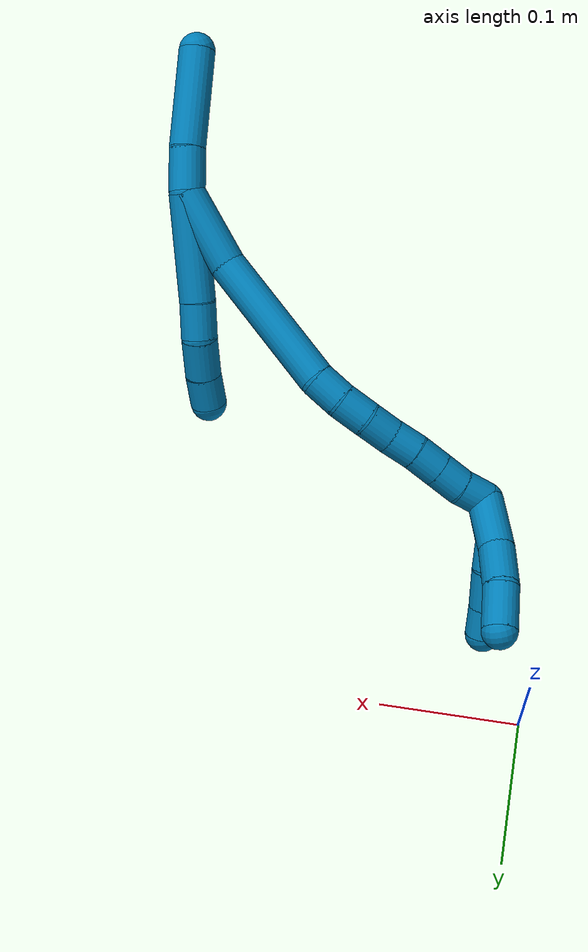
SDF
<sdf version="1.7">
 <world name="default">
  <model name="9">
   <static>0</static>
   <link name="9">
    <collision name="collision-cylinder-e_1_2_8">
     <pose>0.005342 0.003132 -0.036532 -3.05607 0.144677 -2.07482</pose>
     <geometry><cylinder><radius>0.0125</radius><length>0.074107</length></cylinder></geometry>
     <surface>
      <friction><ode><mu>1.16</mu><mu2>1.16</mu2><slip1>0</slip1><slip2>0</slip2></ode></friction>
      <contact><ode><kp>1e+06</kp><kd>1</kd><max_vel>0</max_vel><min_depth>0.001</min_depth></ode></contact>
     </surface>
    </collision>
    <visual name="visual-cylinder-e_1_2_8">
     <pose>0.005342 0.003132 -0.036532 -3.05607 0.144677 -2.07482</pose>
     <geometry><cylinder><radius>0.0125</radius><length>0.074107</length></cylinder></geometry>
     <material><ambient>0 0.490196 0.709804 1</ambient></material>
    </visual>
    <collision name="collision-cylinder-e_2_8_9">
     <pose>0.01289 0.00648 -0.085476 -3.12419 0.175883 -2.94481</pose>
     <geometry><cylinder><radius>0.0125</radius><length>0.025216</length></cylinder></geometry>
     <surface>
      <friction><ode><mu>1.16</mu><mu2>1.16</mu2><slip1>0</slip1><slip2>0</slip2></ode></friction>
      <contact><ode><kp>1e+06</kp><kd>1</kd><max_vel>0</max_vel><min_depth>0.001</min_depth></ode></contact>
     </surface>
    </collision>
    <visual name="visual-cylinder-e_2_8_9">
     <pose>0.01289 0.00648 -0.085476 -3.12419 0.175883 -2.94481</pose>
     <geometry><cylinder><radius>0.0125</radius><length>0.025216</length></cylinder></geometry>
     <material><ambient>0 0.490196 0.709804 1</ambient></material>
    </visual>
    <collision name="collision-cylinder-e_3_9_10">
     <pose>0.015751 0.003376 -0.111383 2.90035 0.047031 0.383329</pose>
     <geometry><cylinder><radius>0.0125</radius><length>0.027826</length></cylinder></geometry>
     <surface>
      <friction><ode><mu>1.16</mu><mu2>1.16</mu2><slip1>0</slip1><slip2>0</slip2></ode></friction>
      <contact><ode><kp>1e+06</kp><kd>1</kd><max_vel>0</max_vel><min_depth>0.001</min_depth></ode></contact>
     </surface>
    </collision>
    <visual name="visual-cylinder-e_3_9_10">
     <pose>0.015751 0.003376 -0.111383 2.90035 0.047031 0.383329</pose>
     <geometry><cylinder><radius>0.0125</radius><length>0.027826</length></cylinder></geometry>
     <material><ambient>0 0.490196 0.709804 1</ambient></material>
    </visual>
    <collision name="collision-cylinder-e_4_10_6">
     <pose>0.016059 -0.002665 -0.13597 2.90105 -0.030264 -0.249141</pose>
     <geometry><cylinder><radius>0.0125</radius><length>0.022851</length></cylinder></geometry>
     <surface>
      <friction><ode><mu>1.16</mu><mu2>1.16</mu2><slip1>0</slip1><slip2>0</slip2></ode></friction>
      <contact><ode><kp>1e+06</kp><kd>1</kd><max_vel>0</max_vel><min_depth>0.001</min_depth></ode></contact>
     </surface>
    </collision>
    <visual name="visual-cylinder-e_4_10_6">
     <pose>0.016059 -0.002665 -0.13597 2.90105 -0.030264 -0.249141</pose>
     <geometry><cylinder><radius>0.0125</radius><length>0.022851</length></cylinder></geometry>
     <material><ambient>0 0.490196 0.709804 1</ambient></material>
    </visual>
    <collision name="collision-cylinder-e_1_2_11">
     <pose>-0.00447 -0.00431 0.013926 0.300174 -0.297543 -0.045323</pose>
     <geometry><cylinder><radius>0.0125</radius><length>0.030495</length></cylinder></geometry>
     <surface>
      <friction><ode><mu>1.16</mu><mu2>1.16</mu2><slip1>0</slip1><slip2>0</slip2></ode></friction>
      <contact><ode><kp>1e+06</kp><kd>1</kd><max_vel>0</max_vel><min_depth>0.001</min_depth></ode></contact>
     </surface>
    </collision>
    <visual name="visual-cylinder-e_1_2_11">
     <pose>-0.00447 -0.00431 0.013926 0.300174 -0.297543 -0.045323</pose>
     <geometry><cylinder><radius>0.0125</radius><length>0.030495</length></cylinder></geometry>
     <material><ambient>0 0.490196 0.709804 1</ambient></material>
    </visual>
    <collision name="collision-cylinder-e_2_11_5">
     <pose>-0.022327 -0.019147 0.058145 0.334432 -0.39542 -0.067602</pose>
     <geometry><cylinder><radius>0.0125</radius><length>0.069505</length></cylinder></geometry>
     <surface>
      <friction><ode><mu>1.16</mu><mu2>1.16</mu2><slip1>0</slip1><slip2>0</slip2></ode></friction>
      <contact><ode><kp>1e+06</kp><kd>1</kd><max_vel>0</max_vel><min_depth>0.001</min_depth></ode></contact>
     </surface>
    </collision>
    <visual name="visual-cylinder-e_2_11_5">
     <pose>-0.022327 -0.019147 0.058145 0.334432 -0.39542 -0.067602</pose>
     <geometry><cylinder><radius>0.0125</radius><length>0.069505</length></cylinder></geometry>
     <material><ambient>0 0.490196 0.709804 1</ambient></material>
    </visual>
    <collision name="collision-cylinder-e_1_2_12">
     <pose>-0.006143 0.009482 -0.025658 -2.78761 -0.22091 1.11008</pose>
     <geometry><cylinder><radius>0.0125</radius><length>0.056071</length></cylinder></geometry>
     <surface>
      <friction><ode><mu>1.16</mu><mu2>1.16</mu2><slip1>0</slip1><slip2>0</slip2></ode></friction>
      <contact><ode><kp>1e+06</kp><kd>1</kd><max_vel>0</max_vel><min_depth>0.001</min_depth></ode></contact>
     </surface>
    </collision>
    <visual name="visual-cylinder-e_1_2_12">
     <pose>-0.006143 0.009482 -0.025658 -2.78761 -0.22091 1.11008</pose>
     <geometry><cylinder><radius>0.0125</radius><length>0.056071</length></cylinder></geometry>
     <material><ambient>0 0.490196 0.709804 1</ambient></material>
    </visual>
    <collision name="collision-cylinder-e_2_12_13">
     <pose>-0.026939 0.046518 -0.090883 -2.53329 -0.295037 0.884296</pose>
     <geometry><cylinder><radius>0.0125</radius><length>0.100785</length></cylinder></geometry>
     <surface>
      <friction><ode><mu>1.16</mu><mu2>1.16</mu2><slip1>0</slip1><slip2>0</slip2></ode></friction>
      <contact><ode><kp>1e+06</kp><kd>1</kd><max_vel>0</max_vel><min_depth>0.001</min_depth></ode></contact>
     </surface>
    </collision>
    <visual name="visual-cylinder-e_2_12_13">
     <pose>-0.026939 0.046518 -0.090883 -2.53329 -0.295037 0.884296</pose>
     <geometry><cylinder><radius>0.0125</radius><length>0.100785</length></cylinder></geometry>
     <material><ambient>0 0.490196 0.709804 1</ambient></material>
    </visual>
    <collision name="collision-cylinder-e_3_13_14">
     <pose>-0.046916 0.078795 -0.138617 -2.6173 -0.513748 1.54953</pose>
     <geometry><cylinder><radius>0.0125</radius><length>0.021667</length></cylinder></geometry>
     <surface>
      <friction><ode><mu>1.16</mu><mu2>1.16</mu2><slip1>0</slip1><slip2>0</slip2></ode></friction>
      <contact><ode><kp>1e+06</kp><kd>1</kd><max_vel>0</max_vel><min_depth>0.001</min_depth></ode></contact>
     </surface>
    </collision>
    <visual name="visual-cylinder-e_3_13_14">
     <pose>-0.046916 0.078795 -0.138617 -2.6173 -0.513748 1.54953</pose>
     <geometry><cylinder><radius>0.0125</radius><length>0.021667</length></cylinder></geometry>
     <material><ambient>0 0.490196 0.709804 1</ambient></material>
    </visual>
    <collision name="collision-cylinder-e_4_14_15">
     <pose>-0.058667 0.086865 -0.154488 -2.73163 -0.653171 2.04059</pose>
     <geometry><cylinder><radius>0.0125</radius><length>0.021152</length></cylinder></geometry>
     <surface>
      <friction><ode><mu>1.16</mu><mu2>1.16</mu2><slip1>0</slip1><slip2>0</slip2></ode></friction>
      <contact><ode><kp>1e+06</kp><kd>1</kd><max_vel>0</max_vel><min_depth>0.001</min_depth></ode></contact>
     </surface>
    </collision>
    <visual name="visual-cylinder-e_4_14_15">
     <pose>-0.058667 0.086865 -0.154488 -2.73163 -0.653171 2.04059</pose>
     <geometry><cylinder><radius>0.0125</radius><length>0.021152</length></cylinder></geometry>
     <material><ambient>0 0.490196 0.709804 1</ambient></material>
    </visual>
    <collision name="collision-cylinder-e_5_15_16">
     <pose>-0.071649 0.091817 -0.169755 -2.93265 -0.703124 2.58472</pose>
     <geometry><cylinder><radius>0.0125</radius><length>0.020274</length></cylinder></geometry>
     <surface>
      <friction><ode><mu>1.16</mu><mu2>1.16</mu2><slip1>0</slip1><slip2>0</slip2></ode></friction>
      <contact><ode><kp>1e+06</kp><kd>1</kd><max_vel>0</max_vel><min_depth>0.001</min_depth></ode></contact>
     </surface>
    </collision>
    <visual name="visual-cylinder-e_5_15_16">
     <pose>-0.071649 0.091817 -0.169755 -2.93265 -0.703124 2.58472</pose>
     <geometry><cylinder><radius>0.0125</radius><length>0.020274</length></cylinder></geometry>
     <material><ambient>0 0.490196 0.709804 1</ambient></material>
    </visual>
    <collision name="collision-cylinder-e_6_16_17">
     <pose>-0.084884 0.095903 -0.184336 -2.8016 -0.731545 2.29892</pose>
     <geometry><cylinder><radius>0.0125</radius><length>0.020002</length></cylinder></geometry>
     <surface>
      <friction><ode><mu>1.16</mu><mu2>1.16</mu2><slip1>0</slip1><slip2>0</slip2></ode></friction>
      <contact><ode><kp>1e+06</kp><kd>1</kd><max_vel>0</max_vel><min_depth>0.001</min_depth></ode></contact>
     </surface>
    </collision>
    <visual name="visual-cylinder-e_6_16_17">
     <pose>-0.084884 0.095903 -0.184336 -2.8016 -0.731545 2.29892</pose>
     <geometry><cylinder><radius>0.0125</radius><length>0.020002</length></cylinder></geometry>
     <material><ambient>0 0.490196 0.709804 1</ambient></material>
    </visual>
    <collision name="collision-cylinder-e_7_17_18">
     <pose>-0.09772 0.100418 -0.198997 -2.8817 -0.661198 2.41394</pose>
     <geometry><cylinder><radius>0.0125</radius><length>0.020046</length></cylinder></geometry>
     <surface>
      <friction><ode><mu>1.16</mu><mu2>1.16</mu2><slip1>0</slip1><slip2>0</slip2></ode></friction>
      <contact><ode><kp>1e+06</kp><kd>1</kd><max_vel>0</max_vel><min_depth>0.001</min_depth></ode></contact>
     </surface>
    </collision>
    <visual name="visual-cylinder-e_7_17_18">
     <pose>-0.09772 0.100418 -0.198997 -2.8817 -0.661198 2.41394</pose>
     <geometry><cylinder><radius>0.0125</radius><length>0.020046</length></cylinder></geometry>
     <material><ambient>0 0.490196 0.709804 1</ambient></material>
    </visual>
    <collision name="collision-cylinder-e_8_18_19">
     <pose>-0.109997 0.10443 -0.214298 -2.88858 -0.658827 2.42927</pose>
     <geometry><cylinder><radius>0.0125</radius><length>0.020001</length></cylinder></geometry>
     <surface>
      <friction><ode><mu>1.16</mu><mu2>1.16</mu2><slip1>0</slip1><slip2>0</slip2></ode></friction>
      <contact><ode><kp>1e+06</kp><kd>1</kd><max_vel>0</max_vel><min_depth>0.001</min_depth></ode></contact>
     </surface>
    </collision>
    <visual name="visual-cylinder-e_8_18_19">
     <pose>-0.109997 0.10443 -0.214298 -2.88858 -0.658827 2.42927</pose>
     <geometry><cylinder><radius>0.0125</radius><length>0.020001</length></cylinder></geometry>
     <material><ambient>0 0.490196 0.709804 1</ambient></material>
    </visual>
    <collision name="collision-cylinder-e_9_19_1">
     <pose>-0.12347 0.10801 -0.228542 -2.9032 -0.825766 2.60784</pose>
     <geometry><cylinder><radius>0.0125</radius><length>0.020002</length></cylinder></geometry>
     <surface>
      <friction><ode><mu>1.16</mu><mu2>1.16</mu2><slip1>0</slip1><slip2>0</slip2></ode></friction>
      <contact><ode><kp>1e+06</kp><kd>1</kd><max_vel>0</max_vel><min_depth>0.001</min_depth></ode></contact>
     </surface>
    </collision>
    <visual name="visual-cylinder-e_9_19_1">
     <pose>-0.12347 0.10801 -0.228542 -2.9032 -0.825766 2.60784</pose>
     <geometry><cylinder><radius>0.0125</radius><length>0.020002</length></cylinder></geometry>
     <material><ambient>0 0.490196 0.709804 1</ambient></material>
    </visual>
    <collision name="collision-cylinder-e_1_1_20">
     <pose>-0.126634 0.122972 -0.248167 -2.34389 0.220709 -0.514203</pose>
     <geometry><cylinder><radius>0.0125</radius><length>0.03826</length></cylinder></geometry>
     <surface>
      <friction><ode><mu>1.16</mu><mu2>1.16</mu2><slip1>0</slip1><slip2>0</slip2></ode></friction>
      <contact><ode><kp>1e+06</kp><kd>1</kd><max_vel>0</max_vel><min_depth>0.001</min_depth></ode></contact>
     </surface>
    </collision>
    <visual name="visual-cylinder-e_1_1_20">
     <pose>-0.126634 0.122972 -0.248167 -2.34389 0.220709 -0.514203</pose>
     <geometry><cylinder><radius>0.0125</radius><length>0.03826</length></cylinder></geometry>
     <material><ambient>0 0.490196 0.709804 1</ambient></material>
    </visual>
    <collision name="collision-cylinder-e_2_20_21">
     <pose>-0.117278 0.147662 -0.270028 -2.23255 0.345424 -0.685808</pose>
     <geometry><cylinder><radius>0.0125</radius><length>0.030526</length></cylinder></geometry>
     <surface>
      <friction><ode><mu>1.16</mu><mu2>1.16</mu2><slip1>0</slip1><slip2>0</slip2></ode></friction>
      <contact><ode><kp>1e+06</kp><kd>1</kd><max_vel>0</max_vel><min_depth>0.001</min_depth></ode></contact>
     </surface>
    </collision>
    <visual name="visual-cylinder-e_2_20_21">
     <pose>-0.117278 0.147662 -0.270028 -2.23255 0.345424 -0.685808</pose>
     <geometry><cylinder><radius>0.0125</radius><length>0.030526</length></cylinder></geometry>
     <material><ambient>0 0.490196 0.709804 1</ambient></material>
    </visual>
    <collision name="collision-cylinder-e_3_21_4">
     <pose>-0.105413 0.167863 -0.289809 -2.46096 0.443495 -1.13395</pose>
     <geometry><cylinder><radius>0.0125</radius><length>0.031214</length></cylinder></geometry>
     <surface>
      <friction><ode><mu>1.16</mu><mu2>1.16</mu2><slip1>0</slip1><slip2>0</slip2></ode></friction>
      <contact><ode><kp>1e+06</kp><kd>1</kd><max_vel>0</max_vel><min_depth>0.001</min_depth></ode></contact>
     </surface>
    </collision>
    <visual name="visual-cylinder-e_3_21_4">
     <pose>-0.105413 0.167863 -0.289809 -2.46096 0.443495 -1.13395</pose>
     <geometry><cylinder><radius>0.0125</radius><length>0.031214</length></cylinder></geometry>
     <material><ambient>0 0.490196 0.709804 1</ambient></material>
    </visual>
    <collision name="collision-cylinder-e_1_1_22">
     <pose>-0.131237 0.109723 -0.250147 -3.13417 -0.027666 2.61732</pose>
     <geometry><cylinder><radius>0.0125</radius><length>0.030044</length></cylinder></geometry>
     <surface>
      <friction><ode><mu>1.16</mu><mu2>1.16</mu2><slip1>0</slip1><slip2>0</slip2></ode></friction>
      <contact><ode><kp>1e+06</kp><kd>1</kd><max_vel>0</max_vel><min_depth>0.001</min_depth></ode></contact>
     </surface>
    </collision>
    <visual name="visual-cylinder-e_1_1_22">
     <pose>-0.131237 0.109723 -0.250147 -3.13417 -0.027666 2.61732</pose>
     <geometry><cylinder><radius>0.0125</radius><length>0.030044</length></cylinder></geometry>
     <material><ambient>0 0.490196 0.709804 1</ambient></material>
    </visual>
    <collision name="collision-cylinder-e_2_22_23">
     <pose>-0.128422 0.109508 -0.275169 3.10901 0.3122 2.93527</pose>
     <geometry><cylinder><radius>0.0125</radius><length>0.02104</length></cylinder></geometry>
     <surface>
      <friction><ode><mu>1.16</mu><mu2>1.16</mu2><slip1>0</slip1><slip2>0</slip2></ode></friction>
      <contact><ode><kp>1e+06</kp><kd>1</kd><max_vel>0</max_vel><min_depth>0.001</min_depth></ode></contact>
     </surface>
    </collision>
    <visual name="visual-cylinder-e_2_22_23">
     <pose>-0.128422 0.109508 -0.275169 3.10901 0.3122 2.93527</pose>
     <geometry><cylinder><radius>0.0125</radius><length>0.02104</length></cylinder></geometry>
     <material><ambient>0 0.490196 0.709804 1</ambient></material>
    </visual>
    <collision name="collision-cylinder-e_3_23_24">
     <pose>-0.12241 0.107072 -0.298545 2.98505 0.202626 1.82736</pose>
     <geometry><cylinder><radius>0.0125</radius><length>0.027635</length></cylinder></geometry>
     <surface>
      <friction><ode><mu>1.16</mu><mu2>1.16</mu2><slip1>0</slip1><slip2>0</slip2></ode></friction>
      <contact><ode><kp>1e+06</kp><kd>1</kd><max_vel>0</max_vel><min_depth>0.001</min_depth></ode></contact>
     </surface>
    </collision>
    <visual name="visual-cylinder-e_3_23_24">
     <pose>-0.12241 0.107072 -0.298545 2.98505 0.202626 1.82736</pose>
     <geometry><cylinder><radius>0.0125</radius><length>0.027635</length></cylinder></geometry>
     <material><ambient>0 0.490196 0.709804 1</ambient></material>
    </visual>
    <collision name="collision-cylinder-e_4_24_3">
     <pose>-0.11697 0.103209 -0.322067 2.97059 0.252591 1.95406</pose>
     <geometry><cylinder><radius>0.0125</radius><length>0.021281</length></cylinder></geometry>
     <surface>
      <friction><ode><mu>1.16</mu><mu2>1.16</mu2><slip1>0</slip1><slip2>0</slip2></ode></friction>
      <contact><ode><kp>1e+06</kp><kd>1</kd><max_vel>0</max_vel><min_depth>0.001</min_depth></ode></contact>
     </surface>
    </collision>
    <visual name="visual-cylinder-e_4_24_3">
     <pose>-0.11697 0.103209 -0.322067 2.97059 0.252591 1.95406</pose>
     <geometry><cylinder><radius>0.0125</radius><length>0.021281</length></cylinder></geometry>
     <material><ambient>0 0.490196 0.709804 1</ambient></material>
    </visual>
    <collision name="collision-sphere-3">
     <pose>-0.114311 0.101456 -0.332219 0 -0 0</pose>
     <geometry><sphere><radius>0.0125</radius></sphere></geometry>
     <surface>
      <friction><ode><mu>1.16</mu><mu2>1.16</mu2><slip1>0</slip1><slip2>0</slip2></ode></friction>
      <contact><ode><kp>1e+06</kp><kd>1</kd><max_vel>0</max_vel><min_depth>0.001</min_depth></ode></contact>
     </surface>
    </collision>
    <visual name="visual-sphere-3">
     <pose>-0.114311 0.101456 -0.332219 0 -0 0</pose>
     <geometry><sphere><radius>0.0125</radius></sphere></geometry>
     <material><ambient>0 0.490196 0.709804 1</ambient></material>
    </visual>
    <collision name="collision-sphere-24">
     <pose>-0.119629 0.104962 -0.311914 0 -0 0</pose>
     <geometry><sphere><radius>0.0125</radius></sphere></geometry>
     <surface>
      <friction><ode><mu>1.16</mu><mu2>1.16</mu2><slip1>0</slip1><slip2>0</slip2></ode></friction>
      <contact><ode><kp>1e+06</kp><kd>1</kd><max_vel>0</max_vel><min_depth>0.001</min_depth></ode></contact>
     </surface>
    </collision>
    <visual name="visual-sphere-24">
     <pose>-0.119629 0.104962 -0.311914 0 -0 0</pose>
     <geometry><sphere><radius>0.0125</radius></sphere></geometry>
     <material><ambient>0 0.490196 0.709804 1</ambient></material>
    </visual>
    <collision name="collision-sphere-23">
     <pose>-0.12519 0.109182 -0.285175 0 -0 0</pose>
     <geometry><sphere><radius>0.0125</radius></sphere></geometry>
     <surface>
      <friction><ode><mu>1.16</mu><mu2>1.16</mu2><slip1>0</slip1><slip2>0</slip2></ode></friction>
      <contact><ode><kp>1e+06</kp><kd>1</kd><max_vel>0</max_vel><min_depth>0.001</min_depth></ode></contact>
     </surface>
    </collision>
    <visual name="visual-sphere-23">
     <pose>-0.12519 0.109182 -0.285175 0 -0 0</pose>
     <geometry><sphere><radius>0.0125</radius></sphere></geometry>
     <material><ambient>0 0.490196 0.709804 1</ambient></material>
    </visual>
    <collision name="collision-sphere-22">
     <pose>-0.131653 0.109835 -0.265163 0 -0 0</pose>
     <geometry><sphere><radius>0.0125</radius></sphere></geometry>
     <surface>
      <friction><ode><mu>1.16</mu><mu2>1.16</mu2><slip1>0</slip1><slip2>0</slip2></ode></friction>
      <contact><ode><kp>1e+06</kp><kd>1</kd><max_vel>0</max_vel><min_depth>0.001</min_depth></ode></contact>
     </surface>
    </collision>
    <visual name="visual-sphere-22">
     <pose>-0.131653 0.109835 -0.265163 0 -0 0</pose>
     <geometry><sphere><radius>0.0125</radius></sphere></geometry>
     <material><ambient>0 0.490196 0.709804 1</ambient></material>
    </visual>
    <collision name="collision-sphere-4">
     <pose>-0.098716 0.176734 -0.300764 0 -0 0</pose>
     <geometry><sphere><radius>0.0125</radius></sphere></geometry>
     <surface>
      <friction><ode><mu>1.16</mu><mu2>1.16</mu2><slip1>0</slip1><slip2>0</slip2></ode></friction>
      <contact><ode><kp>1e+06</kp><kd>1</kd><max_vel>0</max_vel><min_depth>0.001</min_depth></ode></contact>
     </surface>
    </collision>
    <visual name="visual-sphere-4">
     <pose>-0.098716 0.176734 -0.300764 0 -0 0</pose>
     <geometry><sphere><radius>0.0125</radius></sphere></geometry>
     <material><ambient>0 0.490196 0.709804 1</ambient></material>
    </visual>
    <collision name="collision-sphere-21">
     <pose>-0.11211 0.158992 -0.278853 0 -0 0</pose>
     <geometry><sphere><radius>0.0125</radius></sphere></geometry>
     <surface>
      <friction><ode><mu>1.16</mu><mu2>1.16</mu2><slip1>0</slip1><slip2>0</slip2></ode></friction>
      <contact><ode><kp>1e+06</kp><kd>1</kd><max_vel>0</max_vel><min_depth>0.001</min_depth></ode></contact>
     </surface>
    </collision>
    <visual name="visual-sphere-21">
     <pose>-0.11211 0.158992 -0.278853 0 -0 0</pose>
     <geometry><sphere><radius>0.0125</radius></sphere></geometry>
     <material><ambient>0 0.490196 0.709804 1</ambient></material>
    </visual>
    <collision name="collision-sphere-20">
     <pose>-0.122446 0.136332 -0.261203 0 -0 0</pose>
     <geometry><sphere><radius>0.0125</radius></sphere></geometry>
     <surface>
      <friction><ode><mu>1.16</mu><mu2>1.16</mu2><slip1>0</slip1><slip2>0</slip2></ode></friction>
      <contact><ode><kp>1e+06</kp><kd>1</kd><max_vel>0</max_vel><min_depth>0.001</min_depth></ode></contact>
     </surface>
    </collision>
    <visual name="visual-sphere-20">
     <pose>-0.122446 0.136332 -0.261203 0 -0 0</pose>
     <geometry><sphere><radius>0.0125</radius></sphere></geometry>
     <material><ambient>0 0.490196 0.709804 1</ambient></material>
    </visual>
    <collision name="collision-sphere-11">
     <pose>-0.00894 -0.008621 0.027851 0 -0 0</pose>
     <geometry><sphere><radius>0.0125</radius></sphere></geometry>
     <surface>
      <friction><ode><mu>1.16</mu><mu2>1.16</mu2><slip1>0</slip1><slip2>0</slip2></ode></friction>
      <contact><ode><kp>1e+06</kp><kd>1</kd><max_vel>0</max_vel><min_depth>0.001</min_depth></ode></contact>
     </surface>
    </collision>
    <visual name="visual-sphere-11">
     <pose>-0.00894 -0.008621 0.027851 0 -0 0</pose>
     <geometry><sphere><radius>0.0125</radius></sphere></geometry>
     <material><ambient>0 0.490196 0.709804 1</ambient></material>
    </visual>
    <collision name="collision-sphere-6">
     <pose>0.015713 -0.005385 -0.147061 0 -0 0</pose>
     <geometry><sphere><radius>0.0125</radius></sphere></geometry>
     <surface>
      <friction><ode><mu>1.16</mu><mu2>1.16</mu2><slip1>0</slip1><slip2>0</slip2></ode></friction>
      <contact><ode><kp>1e+06</kp><kd>1</kd><max_vel>0</max_vel><min_depth>0.001</min_depth></ode></contact>
     </surface>
    </collision>
    <visual name="visual-sphere-6">
     <pose>0.015713 -0.005385 -0.147061 0 -0 0</pose>
     <geometry><sphere><radius>0.0125</radius></sphere></geometry>
     <material><ambient>0 0.490196 0.709804 1</ambient></material>
    </visual>
    <collision name="collision-sphere-10">
     <pose>0.016405 5.6e-05 -0.124879 0 -0 0</pose>
     <geometry><sphere><radius>0.0125</radius></sphere></geometry>
     <surface>
      <friction><ode><mu>1.16</mu><mu2>1.16</mu2><slip1>0</slip1><slip2>0</slip2></ode></friction>
      <contact><ode><kp>1e+06</kp><kd>1</kd><max_vel>0</max_vel><min_depth>0.001</min_depth></ode></contact>
     </surface>
    </collision>
    <visual name="visual-sphere-10">
     <pose>0.016405 5.6e-05 -0.124879 0 -0 0</pose>
     <geometry><sphere><radius>0.0125</radius></sphere></geometry>
     <material><ambient>0 0.490196 0.709804 1</ambient></material>
    </visual>
    <collision name="collision-sphere-9">
     <pose>0.015096 0.006696 -0.097888 0 -0 0</pose>
     <geometry><sphere><radius>0.0125</radius></sphere></geometry>
     <surface>
      <friction><ode><mu>1.16</mu><mu2>1.16</mu2><slip1>0</slip1><slip2>0</slip2></ode></friction>
      <contact><ode><kp>1e+06</kp><kd>1</kd><max_vel>0</max_vel><min_depth>0.001</min_depth></ode></contact>
     </surface>
    </collision>
    <visual name="visual-sphere-9">
     <pose>0.015096 0.006696 -0.097888 0 -0 0</pose>
     <geometry><sphere><radius>0.0125</radius></sphere></geometry>
     <material><ambient>0 0.490196 0.709804 1</ambient></material>
    </visual>
    <collision name="collision-sphere-2">
     <geometry><sphere><radius>0.0125</radius></sphere></geometry>
     <surface>
      <friction><ode><mu>1.16</mu><mu2>1.16</mu2><slip1>0</slip1><slip2>0</slip2></ode></friction>
      <contact><ode><kp>1e+06</kp><kd>1</kd><max_vel>0</max_vel><min_depth>0.001</min_depth></ode></contact>
     </surface>
    </collision>
    <visual name="visual-sphere-2">
     <geometry><sphere><radius>0.0125</radius></sphere></geometry>
     <material><ambient>0 0.490196 0.709804 1</ambient></material>
    </visual>
    <collision name="collision-sphere-19">
     <pose>-0.116119 0.106409 -0.221954 0 -0 0</pose>
     <geometry><sphere><radius>0.0125</radius></sphere></geometry>
     <surface>
      <friction><ode><mu>1.16</mu><mu2>1.16</mu2><slip1>0</slip1><slip2>0</slip2></ode></friction>
      <contact><ode><kp>1e+06</kp><kd>1</kd><max_vel>0</max_vel><min_depth>0.001</min_depth></ode></contact>
     </surface>
    </collision>
    <visual name="visual-sphere-19">
     <pose>-0.116119 0.106409 -0.221954 0 -0 0</pose>
     <geometry><sphere><radius>0.0125</radius></sphere></geometry>
     <material><ambient>0 0.490196 0.709804 1</ambient></material>
    </visual>
    <collision name="collision-sphere-8">
     <pose>0.010684 0.006264 -0.073065 0 -0 0</pose>
     <geometry><sphere><radius>0.0125</radius></sphere></geometry>
     <surface>
      <friction><ode><mu>1.16</mu><mu2>1.16</mu2><slip1>0</slip1><slip2>0</slip2></ode></friction>
      <contact><ode><kp>1e+06</kp><kd>1</kd><max_vel>0</max_vel><min_depth>0.001</min_depth></ode></contact>
     </surface>
    </collision>
    <visual name="visual-sphere-8">
     <pose>0.010684 0.006264 -0.073065 0 -0 0</pose>
     <geometry><sphere><radius>0.0125</radius></sphere></geometry>
     <material><ambient>0 0.490196 0.709804 1</ambient></material>
    </visual>
    <collision name="collision-sphere-5">
     <pose>-0.035713 -0.029674 0.088439 0 -0 0</pose>
     <geometry><sphere><radius>0.0125</radius></sphere></geometry>
     <surface>
      <friction><ode><mu>1.16</mu><mu2>1.16</mu2><slip1>0</slip1><slip2>0</slip2></ode></friction>
      <contact><ode><kp>1e+06</kp><kd>1</kd><max_vel>0</max_vel><min_depth>0.001</min_depth></ode></contact>
     </surface>
    </collision>
    <visual name="visual-sphere-5">
     <pose>-0.035713 -0.029674 0.088439 0 -0 0</pose>
     <geometry><sphere><radius>0.0125</radius></sphere></geometry>
     <material><ambient>0 0.490196 0.709804 1</ambient></material>
    </visual>
    <collision name="collision-sphere-12">
     <pose>-0.012286 0.018964 -0.051317 0 -0 0</pose>
     <geometry><sphere><radius>0.0125</radius></sphere></geometry>
     <surface>
      <friction><ode><mu>1.16</mu><mu2>1.16</mu2><slip1>0</slip1><slip2>0</slip2></ode></friction>
      <contact><ode><kp>1e+06</kp><kd>1</kd><max_vel>0</max_vel><min_depth>0.001</min_depth></ode></contact>
     </surface>
    </collision>
    <visual name="visual-sphere-12">
     <pose>-0.012286 0.018964 -0.051317 0 -0 0</pose>
     <geometry><sphere><radius>0.0125</radius></sphere></geometry>
     <material><ambient>0 0.490196 0.709804 1</ambient></material>
    </visual>
    <collision name="collision-sphere-13">
     <pose>-0.041592 0.074072 -0.130449 0 -0 0</pose>
     <geometry><sphere><radius>0.0125</radius></sphere></geometry>
     <surface>
      <friction><ode><mu>1.16</mu><mu2>1.16</mu2><slip1>0</slip1><slip2>0</slip2></ode></friction>
      <contact><ode><kp>1e+06</kp><kd>1</kd><max_vel>0</max_vel><min_depth>0.001</min_depth></ode></contact>
     </surface>
    </collision>
    <visual name="visual-sphere-13">
     <pose>-0.041592 0.074072 -0.130449 0 -0 0</pose>
     <geometry><sphere><radius>0.0125</radius></sphere></geometry>
     <material><ambient>0 0.490196 0.709804 1</ambient></material>
    </visual>
    <collision name="collision-sphere-14">
     <pose>-0.05224 0.083518 -0.146785 0 -0 0</pose>
     <geometry><sphere><radius>0.0125</radius></sphere></geometry>
     <surface>
      <friction><ode><mu>1.16</mu><mu2>1.16</mu2><slip1>0</slip1><slip2>0</slip2></ode></friction>
      <contact><ode><kp>1e+06</kp><kd>1</kd><max_vel>0</max_vel><min_depth>0.001</min_depth></ode></contact>
     </surface>
    </collision>
    <visual name="visual-sphere-14">
     <pose>-0.05224 0.083518 -0.146785 0 -0 0</pose>
     <geometry><sphere><radius>0.0125</radius></sphere></geometry>
     <material><ambient>0 0.490196 0.709804 1</ambient></material>
    </visual>
    <collision name="collision-sphere-15">
     <pose>-0.065094 0.090213 -0.16219 0 -0 0</pose>
     <geometry><sphere><radius>0.0125</radius></sphere></geometry>
     <surface>
      <friction><ode><mu>1.16</mu><mu2>1.16</mu2><slip1>0</slip1><slip2>0</slip2></ode></friction>
      <contact><ode><kp>1e+06</kp><kd>1</kd><max_vel>0</max_vel><min_depth>0.001</min_depth></ode></contact>
     </surface>
    </collision>
    <visual name="visual-sphere-15">
     <pose>-0.065094 0.090213 -0.16219 0 -0 0</pose>
     <geometry><sphere><radius>0.0125</radius></sphere></geometry>
     <material><ambient>0 0.490196 0.709804 1</ambient></material>
    </visual>
    <collision name="collision-sphere-16">
     <pose>-0.078203 0.093421 -0.177319 0 -0 0</pose>
     <geometry><sphere><radius>0.0125</radius></sphere></geometry>
     <surface>
      <friction><ode><mu>1.16</mu><mu2>1.16</mu2><slip1>0</slip1><slip2>0</slip2></ode></friction>
      <contact><ode><kp>1e+06</kp><kd>1</kd><max_vel>0</max_vel><min_depth>0.001</min_depth></ode></contact>
     </surface>
    </collision>
    <visual name="visual-sphere-16">
     <pose>-0.078203 0.093421 -0.177319 0 -0 0</pose>
     <geometry><sphere><radius>0.0125</radius></sphere></geometry>
     <material><ambient>0 0.490196 0.709804 1</ambient></material>
    </visual>
    <collision name="collision-sphere-17">
     <pose>-0.091565 0.098385 -0.191352 0 -0 0</pose>
     <geometry><sphere><radius>0.0125</radius></sphere></geometry>
     <surface>
      <friction><ode><mu>1.16</mu><mu2>1.16</mu2><slip1>0</slip1><slip2>0</slip2></ode></friction>
      <contact><ode><kp>1e+06</kp><kd>1</kd><max_vel>0</max_vel><min_depth>0.001</min_depth></ode></contact>
     </surface>
    </collision>
    <visual name="visual-sphere-17">
     <pose>-0.091565 0.098385 -0.191352 0 -0 0</pose>
     <geometry><sphere><radius>0.0125</radius></sphere></geometry>
     <material><ambient>0 0.490196 0.709804 1</ambient></material>
    </visual>
    <collision name="collision-sphere-18">
     <pose>-0.103875 0.10245 -0.206642 0 -0 0</pose>
     <geometry><sphere><radius>0.0125</radius></sphere></geometry>
     <surface>
      <friction><ode><mu>1.16</mu><mu2>1.16</mu2><slip1>0</slip1><slip2>0</slip2></ode></friction>
      <contact><ode><kp>1e+06</kp><kd>1</kd><max_vel>0</max_vel><min_depth>0.001</min_depth></ode></contact>
     </surface>
    </collision>
    <visual name="visual-sphere-18">
     <pose>-0.103875 0.10245 -0.206642 0 -0 0</pose>
     <geometry><sphere><radius>0.0125</radius></sphere></geometry>
     <material><ambient>0 0.490196 0.709804 1</ambient></material>
    </visual>
    <collision name="collision-sphere-1">
     <pose>-0.130822 0.109612 -0.235131 0 -0 0</pose>
     <geometry><sphere><radius>0.0125</radius></sphere></geometry>
     <surface>
      <friction><ode><mu>1.16</mu><mu2>1.16</mu2><slip1>0</slip1><slip2>0</slip2></ode></friction>
      <contact><ode><kp>1e+06</kp><kd>1</kd><max_vel>0</max_vel><min_depth>0.001</min_depth></ode></contact>
     </surface>
    </collision>
    <visual name="visual-sphere-1">
     <pose>-0.130822 0.109612 -0.235131 0 -0 0</pose>
     <geometry><sphere><radius>0.0125</radius></sphere></geometry>
     <material><ambient>0 0.490196 0.709804 1</ambient></material>
    </visual>
    <inertial>
     <pose>-0.052654 0.057308 -0.131521 0 -0 0</pose>
     <mass>0.75</mass>
     <inertia><ixx>0.00012</ixx><ixy>0</ixy><ixz>0</ixz><iyy>7.8e-05</iyy><iyz>0</iyz><izz>-5.5e-05</izz></inertia>
    </inertial>
   </link>
   <pose>0.276564 -0.277324 0.205538 0.887089 -0.15394 0.524539</pose>
  </model>
 </world>
</sdf>
